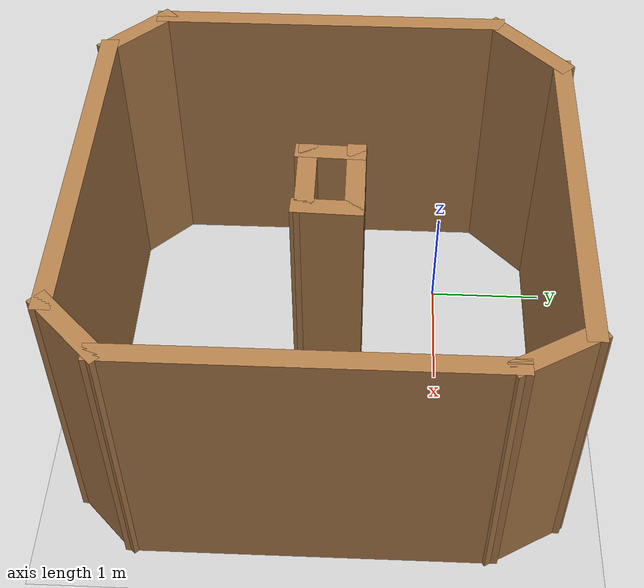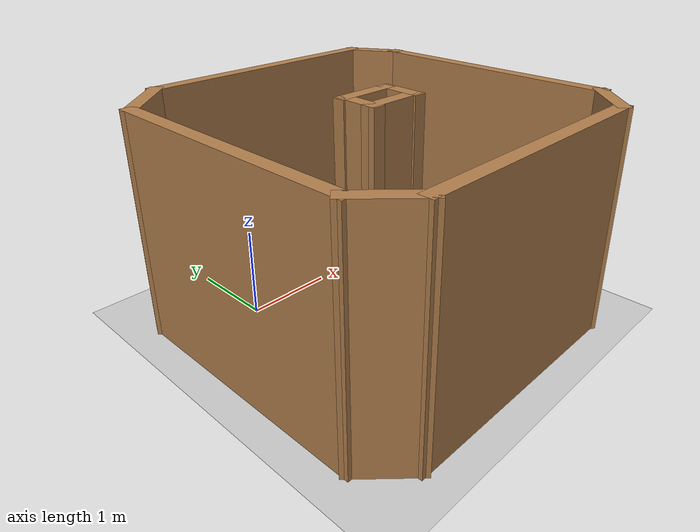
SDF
<sdf version="1.7">
 <world name="default">
  <light name="sun" type="directional">
   <pose>0 0 10 0 -0 0</pose>
   <diffuse>0.8 0.8 0.8 1</diffuse>
   <specular>0.2 0.2 0.2 1</specular>
   <attenuation>
    <range>1000</range>
    <constant>0.9</constant>
    <linear>0.01</linear>
    <quadratic>0.001</quadratic>
   </attenuation>
   <direction>-0.5 0.1 -0.9</direction>
   <spot><inner_angle>0</inner_angle><outer_angle>0</outer_angle><falloff>0</falloff></spot>
  </light>
  <model name="ground_plane">
   <static>1</static>
   <link name="link">
    <collision name="collision">
     <geometry><plane><normal>0 0 1</normal><size>100 100</size></plane></geometry>
     <surface>
      <contact><collide_bitmask>65535</collide_bitmask></contact>
      <friction><ode><mu>100</mu><mu2>50</mu2></ode></friction>
     </surface>
    </collision>
    <visual name="visual">
     <cast_shadows>0</cast_shadows>
     <geometry><plane><normal>0 0 1</normal><size>100 100</size></plane></geometry>
     <material>
      <script><uri>file://media/materials/scripts/gazebo.material</uri><name>Gazebo/Grey</name></script>
     </material>
    </visual>
   </link>
  </model>
  <gravity>0 0 -9.8</gravity>
  <magnetic_field>6e-06 2.3e-05 -4.2e-05</magnetic_field>
  <atmosphere type="adiabatic"/>
  <physics type="ode">
   <max_step_size>0.001</max_step_size>
   <real_time_factor>1</real_time_factor>
   <real_time_update_rate>1000</real_time_update_rate>
  </physics>
  <scene><ambient>0.4 0.4 0.4 1</ambient><background>0.7 0.7 0.7 1</background><shadows>1</shadows></scene>
  <audio><device>default</device></audio>
  <spherical_coordinates>
   <surface_model>EARTH_WGS84</surface_model>
   <latitude_deg>0</latitude_deg>
   <longitude_deg>0</longitude_deg>
   <elevation>0</elevation>
   <heading_deg>0</heading_deg>
  </spherical_coordinates>
  <model name="4walls">
   <pose>0.93692 -0.62147 0 0 -0 0</pose>
   <link name="Wall_0">
    <collision name="Wall_0_Collision">
     <geometry><box><size>3 0.15 2.5</size></box></geometry>
     <pose>0 0 1.25 0 -0 0</pose>
    </collision>
    <visual name="Wall_0_Visual">
     <pose>0 0 1.25 0 -0 0</pose>
     <geometry><box><size>3 0.15 2.5</size></box></geometry>
     <material>
      <script><uri>file://media/materials/scripts/gazebo.material</uri><name>Gazebo/Wood</name></script>
      <ambient>1 1 1 1</ambient>
     </material>
     <meta><layer>0</layer></meta>
    </visual>
    <pose>0.124264 1.54997 0 0 -0 0</pose>
   </link>
   <link name="Wall_1">
    <collision name="Wall_1_Collision">
     <geometry><box><size>0.75 0.15 2.5</size></box></geometry>
     <pose>0 0 1.25 0 -0 0</pose>
    </collision>
    <visual name="Wall_1_Visual">
     <pose>0 0 1.25 0 -0 0</pose>
     <geometry><box><size>0.75 0.15 2.5</size></box></geometry>
     <material>
      <script><uri>file://media/materials/scripts/gazebo.material</uri><name>Gazebo/Wood</name></script>
      <ambient>1 1 1 1</ambient>
     </material>
     <meta><layer>0</layer></meta>
    </visual>
    <pose>1.69926 1.29017 0 0 -0 -1.0472</pose>
   </link>
   <link name="Wall_10">
    <collision name="Wall_10_Collision">
     <geometry><box><size>0.553117 0.15 2.5</size></box></geometry>
     <pose>0 0 1.25 0 -0 0</pose>
    </collision>
    <visual name="Wall_10_Visual">
     <pose>0 0 1.25 0 -0 0</pose>
     <geometry><box><size>0.553117 0.15 2.5</size></box></geometry>
     <material>
      <script><uri>file://media/materials/scripts/gazebo.material</uri><name>Gazebo/Wood</name></script>
      <ambient>1 1 1 1</ambient>
     </material>
     <meta><layer>0</layer></meta>
    </visual>
    <pose>-0.176898 -0.320302 0 0 -0 -1.60361</pose>
   </link>
   <link name="Wall_11">
    <collision name="Wall_11_Collision">
     <geometry><box><size>0.75 0.15 2.5</size></box></geometry>
     <pose>0 0 1.25 0 -0 0</pose>
    </collision>
    <visual name="Wall_11_Visual">
     <pose>0 0 1.25 0 -0 0</pose>
     <geometry><box><size>0.75 0.15 2.5</size></box></geometry>
     <material>
      <script><uri>file://media/materials/scripts/gazebo.material</uri><name>Gazebo/Wood</name></script>
      <ambient>1 1 1 1</ambient>
     </material>
     <meta><layer>0</layer></meta>
    </visual>
    <pose>0.116489 -0.495302 0 0 -0 0</pose>
   </link>
   <link name="Wall_12">
    <collision name="Wall_12_Collision">
     <geometry><box><size>0.553117 0.15 2.5</size></box></geometry>
     <pose>0 0 1.25 0 -0 0</pose>
    </collision>
    <visual name="Wall_12_Visual">
     <pose>0 0 1.25 0 -0 0</pose>
     <geometry><box><size>0.553117 0.15 2.5</size></box></geometry>
     <material>
      <script><uri>file://media/materials/scripts/gazebo.material</uri><name>Gazebo/Wood</name></script>
      <ambient>1 1 1 1</ambient>
     </material>
     <meta><layer>0</layer></meta>
    </visual>
    <pose>0.423102 -0.320302 0 0 -0 1.53798</pose>
   </link>
   <link name="Wall_13">
    <collision name="Wall_13_Collision">
     <geometry><box><size>0.75 0.15 2.5</size></box></geometry>
     <pose>0 0 1.25 0 -0 0</pose>
    </collision>
    <visual name="Wall_13_Visual">
     <pose>0 0 1.25 0 -0 0</pose>
     <geometry><box><size>0.75 0.15 2.5</size></box></geometry>
     <material>
      <script><uri>file://media/materials/scripts/gazebo.material</uri><name>Gazebo/Wood</name></script>
      <ambient>1 1 1 1</ambient>
     </material>
     <meta><layer>0</layer></meta>
    </visual>
    <pose>0.103264 -0.118852 0 0 -0 -3.14159</pose>
   </link>
   <link name="Wall_2">
    <collision name="Wall_2_Collision">
     <geometry><box><size>3 0.15 2.5</size></box></geometry>
     <pose>0 0 1.25 0 -0 0</pose>
    </collision>
    <visual name="Wall_2_Visual">
     <pose>0 0 1.25 0 -0 0</pose>
     <geometry><box><size>3 0.15 2.5</size></box></geometry>
     <material>
      <script><uri>file://media/materials/scripts/gazebo.material</uri><name>Gazebo/Wood</name></script>
      <ambient>1 1 1 1</ambient>
     </material>
     <meta><layer>0</layer></meta>
    </visual>
    <pose>1.84926 -0.394643 0 0 -0 -1.5708</pose>
   </link>
   <link name="Wall_4">
    <collision name="Wall_4_Collision">
     <geometry><box><size>0.75 0.15 2.5</size></box></geometry>
     <pose>0 0 1.25 0 -0 0</pose>
    </collision>
    <visual name="Wall_4_Visual">
     <pose>0 0 1.25 0 -0 0</pose>
     <geometry><box><size>0.75 0.15 2.5</size></box></geometry>
     <material>
      <script><uri>file://media/materials/scripts/gazebo.material</uri><name>Gazebo/Wood</name></script>
      <ambient>1 1 1 1</ambient>
     </material>
     <meta><layer>0</layer></meta>
    </visual>
    <pose>1.63713 -2.03178 0 0 -0 -2.35619</pose>
   </link>
   <link name="Wall_5">
    <collision name="Wall_5_Collision">
     <geometry><box><size>3 0.15 2.5</size></box></geometry>
     <pose>0 0 1.25 0 -0 0</pose>
    </collision>
    <visual name="Wall_5_Visual">
     <pose>0 0 1.25 0 -0 0</pose>
     <geometry><box><size>3 0.15 2.5</size></box></geometry>
     <material>
      <script><uri>file://media/materials/scripts/gazebo.material</uri><name>Gazebo/Wood</name></script>
      <ambient>1 1 1 1</ambient>
     </material>
     <meta><layer>0</layer></meta>
    </visual>
    <pose>-0 -2.24391 0 0 -0 3.14159</pose>
   </link>
   <link name="Wall_6">
    <collision name="Wall_6_Collision">
     <geometry><box><size>0.75 0.15 2.5</size></box></geometry>
     <pose>0 0 1.25 0 -0 0</pose>
    </collision>
    <visual name="Wall_6_Visual">
     <pose>0 0 1.25 0 -0 0</pose>
     <geometry><box><size>0.75 0.15 2.5</size></box></geometry>
     <material>
      <script><uri>file://media/materials/scripts/gazebo.material</uri><name>Gazebo/Wood</name></script>
      <ambient>1 1 1 1</ambient>
     </material>
     <meta><layer>0</layer></meta>
    </visual>
    <pose>-1.63713 -2.03178 0 0 -0 2.35619</pose>
   </link>
   <link name="Wall_7">
    <collision name="Wall_7_Collision">
     <geometry><box><size>3 0.15 2.5</size></box></geometry>
     <pose>0 0 1.25 0 -0 0</pose>
    </collision>
    <visual name="Wall_7_Visual">
     <pose>0 0 1.25 0 -0 0</pose>
     <geometry><box><size>3 0.15 2.5</size></box></geometry>
     <material>
      <script><uri>file://media/materials/scripts/gazebo.material</uri><name>Gazebo/Wood</name></script>
      <ambient>1 1 1 1</ambient>
     </material>
     <meta><layer>0</layer></meta>
    </visual>
    <pose>-1.84926 -0.394643 0 0 -0 1.5708</pose>
   </link>
   <link name="Wall_8">
    <collision name="Wall_8_Collision">
     <geometry><box><size>0.905568 0.15 2.5</size></box></geometry>
     <pose>0 0 1.25 0 -0 0</pose>
    </collision>
    <visual name="Wall_8_Visual">
     <pose>0 0 1.25 0 -0 0</pose>
     <geometry><box><size>0.905568 0.15 2.5</size></box></geometry>
     <material>
      <script><uri>file://media/materials/scripts/gazebo.material</uri><name>Gazebo/Wood</name></script>
      <ambient>1 1 1 1</ambient>
     </material>
     <meta><layer>0</layer></meta>
    </visual>
    <pose>-1.575 1.29017 0 0 -0 0.758336</pose>
   </link>
   <static>1</static>
  </model>
 </world>
</sdf>
